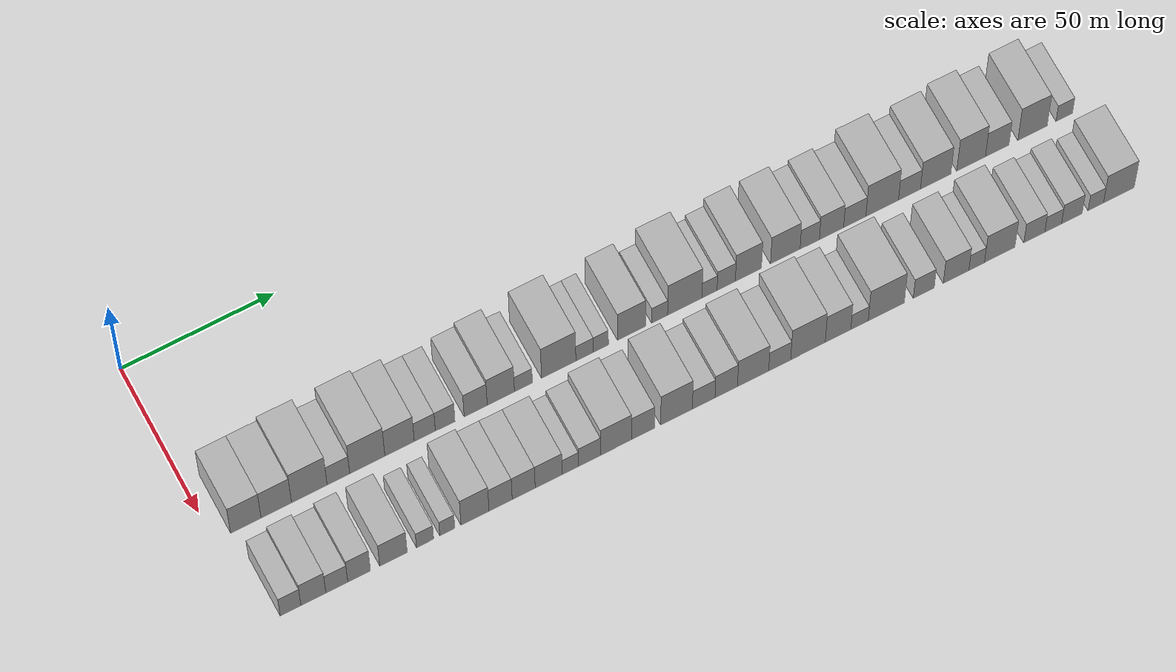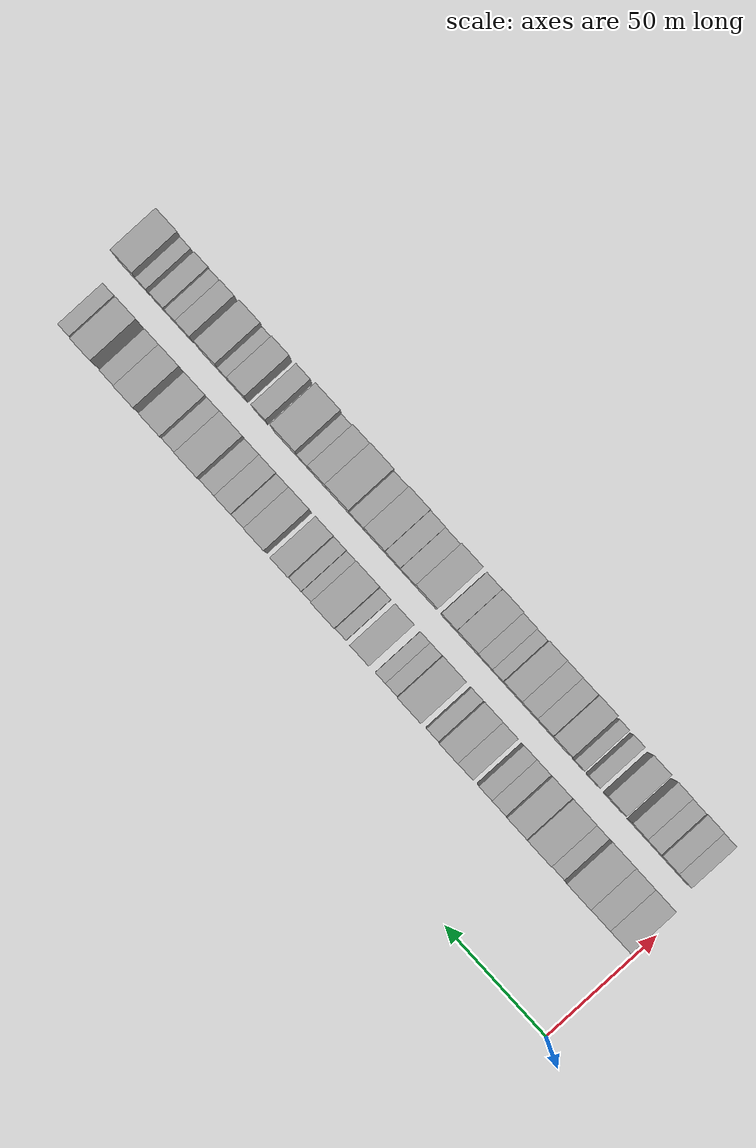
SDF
<sdf version="1.6">
 <world name="default">
  <model name="building_31">
   <static>1</static>
   <pose>50.0000 10.3010 0 0.000000 0.000000 0.000000</pose>
   <link name="link">
    <pose>0 0 10.50 0 0 0</pose>
    <collision name="collision"><geometry><box><size>20.0000 9.8340 21.0000</size></box></geometry></collision>
    <visual name="visual">
     <cast_shadows>0</cast_shadows>
     <geometry><box><size>20.0000 9.8340 21.0000</size></box></geometry>
     <material>
      <script>
       <uri>model://HANNAS_wall/materials/scripts</uri>
       <uri>model://HANNAS_wall/materials/textures</uri>
       <name>vrc/HANNAS_wall</name>
      </script>
     </material>
    </visual>
   </link>
  </model>
  <model name="building_32">
   <static>1</static>
   <pose>50.0000 20.1373 0 0.000000 0.000000 0.000000</pose>
   <link name="link">
    <pose>0 0 10.50 0 0 0</pose>
    <collision name="collision"><geometry><box><size>20.0000 9.8388 21.0000</size></box></geometry></collision>
    <visual name="visual">
     <cast_shadows>0</cast_shadows>
     <geometry><box><size>20.0000 9.8388 21.0000</size></box></geometry>
     <material>
      <script>
       <uri>model://HANNAS_wall/materials/scripts</uri>
       <uri>model://HANNAS_wall/materials/textures</uri>
       <name>vrc/HANNAS_wall</name>
      </script>
     </material>
    </visual>
   </link>
  </model>
  <model name="building_33">
   <static>1</static>
   <pose>50.0000 30.8102 0 0.000000 0.000000 0.000000</pose>
   <link name="link">
    <pose>0 0 12.00 0 0 0</pose>
    <collision name="collision"><geometry><box><size>20.0000 11.5070 24.0000</size></box></geometry></collision>
    <visual name="visual">
     <cast_shadows>0</cast_shadows>
     <geometry><box><size>20.0000 11.5070 24.0000</size></box></geometry>
     <material>
      <script>
       <uri>model://HANNAS_wall/materials/scripts</uri>
       <uri>model://HANNAS_wall/materials/textures</uri>
       <name>vrc/HANNAS_wall</name>
      </script>
     </material>
    </visual>
   </link>
  </model>
  <model name="building_34">
   <static>1</static>
   <pose>50.0000 40.2271 0 0.000000 0.000000 0.000000</pose>
   <link name="link">
    <pose>0 0 7.50 0 0 0</pose>
    <collision name="collision"><geometry><box><size>20.0000 7.3268 15.0000</size></box></geometry></collision>
    <visual name="visual">
     <cast_shadows>0</cast_shadows>
     <geometry><box><size>20.0000 7.3268 15.0000</size></box></geometry>
     <material>
      <script>
       <uri>model://HANNAS_wall/materials/scripts</uri>
       <uri>model://HANNAS_wall/materials/textures</uri>
       <name>vrc/HANNAS_wall</name>
      </script>
     </material>
    </visual>
   </link>
  </model>
  <model name="building_35">
   <static>1</static>
   <pose>50.0000 49.6016 0 0.000000 0.000000 0.000000</pose>
   <link name="link">
    <pose>0 0 12.00 0 0 0</pose>
    <collision name="collision"><geometry><box><size>20.0000 11.4222 24.0000</size></box></geometry></collision>
    <visual name="visual">
     <cast_shadows>0</cast_shadows>
     <geometry><box><size>20.0000 11.4222 24.0000</size></box></geometry>
     <material>
      <script>
       <uri>model://HANNAS_wall/materials/scripts</uri>
       <uri>model://HANNAS_wall/materials/textures</uri>
       <name>vrc/HANNAS_wall</name>
      </script>
     </material>
    </visual>
   </link>
  </model>
  <model name="building_36">
   <static>1</static>
   <pose>50.0000 60.0975 0 0.000000 0.000000 0.000000</pose>
   <link name="link">
    <pose>0 0 10.50 0 0 0</pose>
    <collision name="collision"><geometry><box><size>20.0000 9.5696 21.0000</size></box></geometry></collision>
    <visual name="visual">
     <cast_shadows>0</cast_shadows>
     <geometry><box><size>20.0000 9.5696 21.0000</size></box></geometry>
     <material>
      <script>
       <uri>model://HANNAS_wall/materials/scripts</uri>
       <uri>model://HANNAS_wall/materials/textures</uri>
       <name>vrc/HANNAS_wall</name>
      </script>
     </material>
    </visual>
   </link>
  </model>
  <model name="building_37">
   <static>1</static>
   <pose>50.0000 68.3081 0 0.000000 0.000000 0.000000</pose>
   <link name="link">
    <pose>0 0 7.50 0 0 0</pose>
    <collision name="collision"><geometry><box><size>20.0000 6.8517 15.0000</size></box></geometry></collision>
    <visual name="visual">
     <cast_shadows>0</cast_shadows>
     <geometry><box><size>20.0000 6.8517 15.0000</size></box></geometry>
     <material>
      <script>
       <uri>model://HANNAS_wall/materials/scripts</uri>
       <uri>model://HANNAS_wall/materials/textures</uri>
       <name>vrc/HANNAS_wall</name>
      </script>
     </material>
    </visual>
   </link>
  </model>
  <model name="building_38">
   <static>1</static>
   <pose>50.0000 74.9236 0 0.000000 0.000000 0.000000</pose>
   <link name="link">
    <pose>0 0 7.50 0 0 0</pose>
    <collision name="collision"><geometry><box><size>20.0000 6.3793 15.0000</size></box></geometry></collision>
    <visual name="visual">
     <cast_shadows>0</cast_shadows>
     <geometry><box><size>20.0000 6.3793 15.0000</size></box></geometry>
     <material>
      <script>
       <uri>model://HANNAS_wall/materials/scripts</uri>
       <uri>model://HANNAS_wall/materials/textures</uri>
       <name>vrc/HANNAS_wall</name>
      </script>
     </material>
    </visual>
   </link>
  </model>
  <model name="building_39">
   <static>1</static>
   <pose>50.0000 84.8796 0 0.000000 0.000000 0.000000</pose>
   <link name="link">
    <pose>0 0 9.00 0 0 0</pose>
    <collision name="collision"><geometry><box><size>20.0000 7.5326 18.0000</size></box></geometry></collision>
    <visual name="visual">
     <cast_shadows>0</cast_shadows>
     <geometry><box><size>20.0000 7.5326 18.0000</size></box></geometry>
     <material>
      <script>
       <uri>model://HANNAS_wall/materials/scripts</uri>
       <uri>model://HANNAS_wall/materials/textures</uri>
       <name>vrc/HANNAS_wall</name>
      </script>
     </material>
    </visual>
   </link>
  </model>
  <model name="building_40">
   <static>1</static>
   <pose>50.0000 93.0982 0 0.000000 0.000000 0.000000</pose>
   <link name="link">
    <pose>0 0 10.50 0 0 0</pose>
    <collision name="collision"><geometry><box><size>20.0000 8.9047 21.0000</size></box></geometry></collision>
    <visual name="visual">
     <cast_shadows>0</cast_shadows>
     <geometry><box><size>20.0000 8.9047 21.0000</size></box></geometry>
     <material>
      <script>
       <uri>model://HANNAS_wall/materials/scripts</uri>
       <uri>model://HANNAS_wall/materials/textures</uri>
       <name>vrc/HANNAS_wall</name>
      </script>
     </material>
    </visual>
   </link>
  </model>
  <model name="building_41">
   <static>1</static>
   <pose>50.0000 100.4825 0 0.000000 0.000000 0.000000</pose>
   <link name="link">
    <pose>0 0 6.00 0 0 0</pose>
    <collision name="collision"><geometry><box><size>20.0000 5.8639 12.0000</size></box></geometry></collision>
    <visual name="visual">
     <cast_shadows>0</cast_shadows>
     <geometry><box><size>20.0000 5.8639 12.0000</size></box></geometry>
     <material>
      <script>
       <uri>model://HANNAS_wall/materials/scripts</uri>
       <uri>model://HANNAS_wall/materials/textures</uri>
       <name>vrc/HANNAS_wall</name>
      </script>
     </material>
    </visual>
   </link>
  </model>
  <model name="building_42">
   <static>1</static>
   <pose>50.0000 112.0596 0 0.000000 0.000000 0.000000</pose>
   <link name="link">
    <pose>0 0 12.00 0 0 0</pose>
    <collision name="collision"><geometry><box><size>20.0000 11.2903 24.0000</size></box></geometry></collision>
    <visual name="visual">
     <cast_shadows>0</cast_shadows>
     <geometry><box><size>20.0000 11.2903 24.0000</size></box></geometry>
     <material>
      <script>
       <uri>model://HANNAS_wall/materials/scripts</uri>
       <uri>model://HANNAS_wall/materials/textures</uri>
       <name>vrc/HANNAS_wall</name>
      </script>
     </material>
    </visual>
   </link>
  </model>
  <model name="building_43">
   <static>1</static>
   <pose>50.0000 120.6020 0 0.000000 0.000000 0.000000</pose>
   <link name="link">
    <pose>0 0 6.00 0 0 0</pose>
    <collision name="collision"><geometry><box><size>20.0000 5.7946 12.0000</size></box></geometry></collision>
    <visual name="visual">
     <cast_shadows>0</cast_shadows>
     <geometry><box><size>20.0000 5.7946 12.0000</size></box></geometry>
     <material>
      <script>
       <uri>model://HANNAS_wall/materials/scripts</uri>
       <uri>model://HANNAS_wall/materials/textures</uri>
       <name>vrc/HANNAS_wall</name>
      </script>
     </material>
    </visual>
   </link>
  </model>
  <model name="building_44">
   <static>1</static>
   <pose>50.0000 125.9452 0 0.000000 0.000000 0.000000</pose>
   <link name="link">
    <pose>0 0 6.00 0 0 0</pose>
    <collision name="collision"><geometry><box><size>20.0000 4.8918 12.0000</size></box></geometry></collision>
    <visual name="visual">
     <cast_shadows>0</cast_shadows>
     <geometry><box><size>20.0000 4.8918 12.0000</size></box></geometry>
     <material>
      <script>
       <uri>model://HANNAS_wall/materials/scripts</uri>
       <uri>model://HANNAS_wall/materials/textures</uri>
       <name>vrc/HANNAS_wall</name>
      </script>
     </material>
    </visual>
   </link>
  </model>
  <model name="building_45">
   <static>1</static>
   <pose>50.0000 136.0157 0 0.000000 0.000000 0.000000</pose>
   <link name="link">
    <pose>0 0 10.50 0 0 0</pose>
    <collision name="collision"><geometry><box><size>20.0000 9.2492 21.0000</size></box></geometry></collision>
    <visual name="visual">
     <cast_shadows>0</cast_shadows>
     <geometry><box><size>20.0000 9.2492 21.0000</size></box></geometry>
     <material>
      <script>
       <uri>model://HANNAS_wall/materials/scripts</uri>
       <uri>model://HANNAS_wall/materials/textures</uri>
       <name>vrc/HANNAS_wall</name>
      </script>
     </material>
    </visual>
   </link>
  </model>
  <model name="building_46">
   <static>1</static>
   <pose>50.0000 145.2747 0 0.000000 0.000000 0.000000</pose>
   <link name="link">
    <pose>0 0 6.00 0 0 0</pose>
    <collision name="collision"><geometry><box><size>20.0000 5.2688 12.0000</size></box></geometry></collision>
    <visual name="visual">
     <cast_shadows>0</cast_shadows>
     <geometry><box><size>20.0000 5.2688 12.0000</size></box></geometry>
     <material>
      <script>
       <uri>model://HANNAS_wall/materials/scripts</uri>
       <uri>model://HANNAS_wall/materials/textures</uri>
       <name>vrc/HANNAS_wall</name>
      </script>
     </material>
    </visual>
   </link>
  </model>
  <model name="building_47">
   <static>1</static>
   <pose>50.0000 153.6020 0 0.000000 0.000000 0.000000</pose>
   <link name="link">
    <pose>0 0 12.00 0 0 0</pose>
    <collision name="collision"><geometry><box><size>20.0000 11.3859 24.0000</size></box></geometry></collision>
    <visual name="visual">
     <cast_shadows>0</cast_shadows>
     <geometry><box><size>20.0000 11.3859 24.0000</size></box></geometry>
     <material>
      <script>
       <uri>model://HANNAS_wall/materials/scripts</uri>
       <uri>model://HANNAS_wall/materials/textures</uri>
       <name>vrc/HANNAS_wall</name>
      </script>
     </material>
    </visual>
   </link>
  </model>
  <model name="building_48">
   <static>1</static>
   <pose>50.0000 161.7843 0 0.000000 0.000000 0.000000</pose>
   <link name="link">
    <pose>0 0 6.00 0 0 0</pose>
    <collision name="collision"><geometry><box><size>20.0000 4.9787 12.0000</size></box></geometry></collision>
    <visual name="visual">
     <cast_shadows>0</cast_shadows>
     <geometry><box><size>20.0000 4.9787 12.0000</size></box></geometry>
     <material>
      <script>
       <uri>model://HANNAS_wall/materials/scripts</uri>
       <uri>model://HANNAS_wall/materials/textures</uri>
       <name>vrc/HANNAS_wall</name>
      </script>
     </material>
    </visual>
   </link>
  </model>
  <model name="building_49">
   <static>1</static>
   <pose>50.0000 167.3069 0 0.000000 0.000000 0.000000</pose>
   <link name="link">
    <pose>0 0 7.50 0 0 0</pose>
    <collision name="collision"><geometry><box><size>20.0000 6.0666 15.0000</size></box></geometry></collision>
    <visual name="visual">
     <cast_shadows>0</cast_shadows>
     <geometry><box><size>20.0000 6.0666 15.0000</size></box></geometry>
     <material>
      <script>
       <uri>model://HANNAS_wall/materials/scripts</uri>
       <uri>model://HANNAS_wall/materials/textures</uri>
       <name>vrc/HANNAS_wall</name>
      </script>
     </material>
    </visual>
   </link>
  </model>
  <model name="building_50">
   <static>1</static>
   <pose>50.0000 174.6600 0 0.000000 0.000000 0.000000</pose>
   <link name="link">
    <pose>0 0 10.50 0 0 0</pose>
    <collision name="collision"><geometry><box><size>20.0000 8.6395 21.0000</size></box></geometry></collision>
    <visual name="visual">
     <cast_shadows>0</cast_shadows>
     <geometry><box><size>20.0000 8.6395 21.0000</size></box></geometry>
     <material>
      <script>
       <uri>model://HANNAS_wall/materials/scripts</uri>
       <uri>model://HANNAS_wall/materials/textures</uri>
       <name>vrc/HANNAS_wall</name>
      </script>
     </material>
    </visual>
   </link>
  </model>
  <model name="building_51">
   <static>1</static>
   <pose>50.0000 186.8944 0 0.000000 0.000000 0.000000</pose>
   <link name="link">
    <pose>0 0 10.50 0 0 0</pose>
    <collision name="collision"><geometry><box><size>20.0000 9.8294 21.0000</size></box></geometry></collision>
    <visual name="visual">
     <cast_shadows>0</cast_shadows>
     <geometry><box><size>20.0000 9.8294 21.0000</size></box></geometry>
     <material>
      <script>
       <uri>model://HANNAS_wall/materials/scripts</uri>
       <uri>model://HANNAS_wall/materials/textures</uri>
       <name>vrc/HANNAS_wall</name>
      </script>
     </material>
    </visual>
   </link>
  </model>
  <model name="building_52">
   <static>1</static>
   <pose>50.0000 195.0261 0 0.000000 0.000000 0.000000</pose>
   <link name="link">
    <pose>0 0 7.50 0 0 0</pose>
    <collision name="collision"><geometry><box><size>20.0000 6.4340 15.0000</size></box></geometry></collision>
    <visual name="visual">
     <cast_shadows>0</cast_shadows>
     <geometry><box><size>20.0000 6.4340 15.0000</size></box></geometry>
     <material>
      <script>
       <uri>model://HANNAS_wall/materials/scripts</uri>
       <uri>model://HANNAS_wall/materials/textures</uri>
       <name>vrc/HANNAS_wall</name>
      </script>
     </material>
    </visual>
   </link>
  </model>
  <model name="building_53">
   <static>1</static>
   <pose>50.0000 202.2781 0 0.000000 0.000000 0.000000</pose>
   <link name="link">
    <pose>0 0 9.00 0 0 0</pose>
    <collision name="collision"><geometry><box><size>20.0000 8.0700 18.0000</size></box></geometry></collision>
    <visual name="visual">
     <cast_shadows>0</cast_shadows>
     <geometry><box><size>20.0000 8.0700 18.0000</size></box></geometry>
     <material>
      <script>
       <uri>model://HANNAS_wall/materials/scripts</uri>
       <uri>model://HANNAS_wall/materials/textures</uri>
       <name>vrc/HANNAS_wall</name>
      </script>
     </material>
    </visual>
   </link>
  </model>
  <model name="building_54">
   <static>1</static>
   <pose>50.0000 210.0287 0 0.000000 0.000000 0.000000</pose>
   <link name="link">
    <pose>0 0 7.50 0 0 0</pose>
    <collision name="collision"><geometry><box><size>20.0000 7.4312 15.0000</size></box></geometry></collision>
    <visual name="visual">
     <cast_shadows>0</cast_shadows>
     <geometry><box><size>20.0000 7.4312 15.0000</size></box></geometry>
     <material>
      <script>
       <uri>model://HANNAS_wall/materials/scripts</uri>
       <uri>model://HANNAS_wall/materials/textures</uri>
       <name>vrc/HANNAS_wall</name>
      </script>
     </material>
    </visual>
   </link>
  </model>
  <model name="building_55">
   <static>1</static>
   <pose>50.0000 219.2063 0 0.000000 0.000000 0.000000</pose>
   <link name="link">
    <pose>0 0 12.00 0 0 0</pose>
    <collision name="collision"><geometry><box><size>20.0000 10.9239 24.0000</size></box></geometry></collision>
    <visual name="visual">
     <cast_shadows>0</cast_shadows>
     <geometry><box><size>20.0000 10.9239 24.0000</size></box></geometry>
     <material>
      <script>
       <uri>model://HANNAS_wall/materials/scripts</uri>
       <uri>model://HANNAS_wall/materials/textures</uri>
       <name>vrc/HANNAS_wall</name>
      </script>
     </material>
    </visual>
   </link>
  </model>
  <model name="building_56">
   <static>1</static>
   <pose>50.0000 228.3347 0 0.000000 0.000000 0.000000</pose>
   <link name="link">
    <pose>0 0 7.50 0 0 0</pose>
    <collision name="collision"><geometry><box><size>20.0000 7.3330 15.0000</size></box></geometry></collision>
    <visual name="visual">
     <cast_shadows>0</cast_shadows>
     <geometry><box><size>20.0000 7.3330 15.0000</size></box></geometry>
     <material>
      <script>
       <uri>model://HANNAS_wall/materials/scripts</uri>
       <uri>model://HANNAS_wall/materials/textures</uri>
       <name>vrc/HANNAS_wall</name>
      </script>
     </material>
    </visual>
   </link>
  </model>
  <model name="building_57">
   <static>1</static>
   <pose>50.0000 237.0896 0 0.000000 0.000000 0.000000</pose>
   <link name="link">
    <pose>0 0 10.50 0 0 0</pose>
    <collision name="collision"><geometry><box><size>20.0000 10.1768 21.0000</size></box></geometry></collision>
    <visual name="visual">
     <cast_shadows>0</cast_shadows>
     <geometry><box><size>20.0000 10.1768 21.0000</size></box></geometry>
     <material>
      <script>
       <uri>model://HANNAS_wall/materials/scripts</uri>
       <uri>model://HANNAS_wall/materials/textures</uri>
       <name>vrc/HANNAS_wall</name>
      </script>
     </material>
    </visual>
   </link>
  </model>
  <model name="building_58">
   <static>1</static>
   <pose>50.0000 248.9940 0 0.000000 0.000000 0.000000</pose>
   <link name="link">
    <pose>0 0 12.00 0 0 0</pose>
    <collision name="collision"><geometry><box><size>20.0000 9.6319 24.0000</size></box></geometry></collision>
    <visual name="visual">
     <cast_shadows>0</cast_shadows>
     <geometry><box><size>20.0000 9.6319 24.0000</size></box></geometry>
     <material>
      <script>
       <uri>model://HANNAS_wall/materials/scripts</uri>
       <uri>model://HANNAS_wall/materials/textures</uri>
       <name>vrc/HANNAS_wall</name>
      </script>
     </material>
    </visual>
   </link>
  </model>
  <model name="building_59">
   <static>1</static>
   <pose>50.0000 257.7727 0 0.000000 0.000000 0.000000</pose>
   <link name="link">
    <pose>0 0 9.00 0 0 0</pose>
    <collision name="collision"><geometry><box><size>20.0000 7.9254 18.0000</size></box></geometry></collision>
    <visual name="visual">
     <cast_shadows>0</cast_shadows>
     <geometry><box><size>20.0000 7.9254 18.0000</size></box></geometry>
     <material>
      <script>
       <uri>model://HANNAS_wall/materials/scripts</uri>
       <uri>model://HANNAS_wall/materials/textures</uri>
       <name>vrc/HANNAS_wall</name>
      </script>
     </material>
    </visual>
   </link>
  </model>
  <model name="building_60">
   <static>1</static>
   <pose>50.0000 269.6629 0 0.000000 0.000000 0.000000</pose>
   <link name="link">
    <pose>0 0 12.00 0 0 0</pose>
    <collision name="collision"><geometry><box><size>20.0000 9.8551 24.0000</size></box></geometry></collision>
    <visual name="visual">
     <cast_shadows>0</cast_shadows>
     <geometry><box><size>20.0000 9.8551 24.0000</size></box></geometry>
     <material>
      <script>
       <uri>model://HANNAS_wall/materials/scripts</uri>
       <uri>model://HANNAS_wall/materials/textures</uri>
       <name>vrc/HANNAS_wall</name>
      </script>
     </material>
    </visual>
   </link>
  </model>
  <model name="building_61">
   <static>1</static>
   <pose>50.0000 280.3805 0 0.000000 0.000000 0.000000</pose>
   <link name="link">
    <pose>0 0 6.00 0 0 0</pose>
    <collision name="collision"><geometry><box><size>20.0000 5.5799 12.0000</size></box></geometry></collision>
    <visual name="visual">
     <cast_shadows>0</cast_shadows>
     <geometry><box><size>20.0000 5.5799 12.0000</size></box></geometry>
     <material>
      <script>
       <uri>model://HANNAS_wall/materials/scripts</uri>
       <uri>model://HANNAS_wall/materials/textures</uri>
       <name>vrc/HANNAS_wall</name>
      </script>
     </material>
    </visual>
   </link>
  </model>
  <model name="building_95">
   <static>1</static>
   <pose>79.0000 9.9615 0 0.000000 0.000000 0.000000</pose>
   <link name="link">
    <pose>0 0 7.50 0 0 0</pose>
    <collision name="collision"><geometry><box><size>20.0000 6.6652 15.0000</size></box></geometry></collision>
    <visual name="visual">
     <cast_shadows>0</cast_shadows>
     <geometry><box><size>20.0000 6.6652 15.0000</size></box></geometry>
     <material>
      <script>
       <uri>model://HANNAS_wall/materials/scripts</uri>
       <uri>model://HANNAS_wall/materials/textures</uri>
       <name>vrc/HANNAS_wall</name>
      </script>
     </material>
    </visual>
   </link>
  </model>
  <model name="building_96">
   <static>1</static>
   <pose>79.0000 17.3039 0 0.000000 0.000000 0.000000</pose>
   <link name="link">
    <pose>0 0 9.00 0 0 0</pose>
    <collision name="collision"><geometry><box><size>20.0000 8.0195 18.0000</size></box></geometry></collision>
    <visual name="visual">
     <cast_shadows>0</cast_shadows>
     <geometry><box><size>20.0000 8.0195 18.0000</size></box></geometry>
     <material>
      <script>
       <uri>model://HANNAS_wall/materials/scripts</uri>
       <uri>model://HANNAS_wall/materials/textures</uri>
       <name>vrc/HANNAS_wall</name>
      </script>
     </material>
    </visual>
   </link>
  </model>
  <model name="building_97">
   <static>1</static>
   <pose>79.0000 24.8488 0 0.000000 0.000000 0.000000</pose>
   <link name="link">
    <pose>0 0 7.50 0 0 0</pose>
    <collision name="collision"><geometry><box><size>20.0000 7.0703 15.0000</size></box></geometry></collision>
    <visual name="visual">
     <cast_shadows>0</cast_shadows>
     <geometry><box><size>20.0000 7.0703 15.0000</size></box></geometry>
     <material>
      <script>
       <uri>model://HANNAS_wall/materials/scripts</uri>
       <uri>model://HANNAS_wall/materials/textures</uri>
       <name>vrc/HANNAS_wall</name>
      </script>
     </material>
    </visual>
   </link>
  </model>
  <model name="building_98">
   <static>1</static>
   <pose>79.0000 32.0305 0 0.000000 0.000000 0.000000</pose>
   <link name="link">
    <pose>0 0 9.00 0 0 0</pose>
    <collision name="collision"><geometry><box><size>20.0000 7.2931 18.0000</size></box></geometry></collision>
    <visual name="visual">
     <cast_shadows>0</cast_shadows>
     <geometry><box><size>20.0000 7.2931 18.0000</size></box></geometry>
     <material>
      <script>
       <uri>model://HANNAS_wall/materials/scripts</uri>
       <uri>model://HANNAS_wall/materials/textures</uri>
       <name>vrc/HANNAS_wall</name>
      </script>
     </material>
    </visual>
   </link>
  </model>
  <model name="building_99">
   <static>1</static>
   <pose>79.0000 43.1184 0 0.000000 0.000000 0.000000</pose>
   <link name="link">
    <pose>0 0 9.00 0 0 0</pose>
    <collision name="collision"><geometry><box><size>20.0000 8.8828 18.0000</size></box></geometry></collision>
    <visual name="visual">
     <cast_shadows>0</cast_shadows>
     <geometry><box><size>20.0000 8.8828 18.0000</size></box></geometry>
     <material>
      <script>
       <uri>model://HANNAS_wall/materials/scripts</uri>
       <uri>model://HANNAS_wall/materials/textures</uri>
       <name>vrc/HANNAS_wall</name>
      </script>
     </material>
    </visual>
   </link>
  </model>
  <model name="building_100">
   <static>1</static>
   <pose>79.0000 53.3364 0 0.000000 0.000000 0.000000</pose>
   <link name="link">
    <pose>0 0 6.00 0 0 0</pose>
    <collision name="collision"><geometry><box><size>20.0000 5.5532 12.0000</size></box></geometry></collision>
    <visual name="visual">
     <cast_shadows>0</cast_shadows>
     <geometry><box><size>20.0000 5.5532 12.0000</size></box></geometry>
     <material>
      <script>
       <uri>model://HANNAS_wall/materials/scripts</uri>
       <uri>model://HANNAS_wall/materials/textures</uri>
       <name>vrc/HANNAS_wall</name>
      </script>
     </material>
    </visual>
   </link>
  </model>
  <model name="building_101">
   <static>1</static>
   <pose>79.0000 60.5450 0 0.000000 0.000000 0.000000</pose>
   <link name="link">
    <pose>0 0 6.00 0 0 0</pose>
    <collision name="collision"><geometry><box><size>20.0000 4.8638 12.0000</size></box></geometry></collision>
    <visual name="visual">
     <cast_shadows>0</cast_shadows>
     <geometry><box><size>20.0000 4.8638 12.0000</size></box></geometry>
     <material>
      <script>
       <uri>model://HANNAS_wall/materials/scripts</uri>
       <uri>model://HANNAS_wall/materials/textures</uri>
       <name>vrc/HANNAS_wall</name>
      </script>
     </material>
    </visual>
   </link>
  </model>
  <model name="building_102">
   <static>1</static>
   <pose>79.0000 69.5289 0 0.000000 0.000000 0.000000</pose>
   <link name="link">
    <pose>0 0 10.50 0 0 0</pose>
    <collision name="collision"><geometry><box><size>20.0000 9.1040 21.0000</size></box></geometry></collision>
    <visual name="visual">
     <cast_shadows>0</cast_shadows>
     <geometry><box><size>20.0000 9.1040 21.0000</size></box></geometry>
     <material>
      <script>
       <uri>model://HANNAS_wall/materials/scripts</uri>
       <uri>model://HANNAS_wall/materials/textures</uri>
       <name>vrc/HANNAS_wall</name>
      </script>
     </material>
    </visual>
   </link>
  </model>
  <model name="building_103">
   <static>1</static>
   <pose>79.0000 77.8512 0 0.000000 0.000000 0.000000</pose>
   <link name="link">
    <pose>0 0 9.00 0 0 0</pose>
    <collision name="collision"><geometry><box><size>20.0000 7.5407 18.0000</size></box></geometry></collision>
    <visual name="visual">
     <cast_shadows>0</cast_shadows>
     <geometry><box><size>20.0000 7.5407 18.0000</size></box></geometry>
     <material>
      <script>
       <uri>model://HANNAS_wall/materials/scripts</uri>
       <uri>model://HANNAS_wall/materials/textures</uri>
       <name>vrc/HANNAS_wall</name>
      </script>
     </material>
    </visual>
   </link>
  </model>
  <model name="building_104">
   <static>1</static>
   <pose>79.0000 85.3609 0 0.000000 0.000000 0.000000</pose>
   <link name="link">
    <pose>0 0 9.00 0 0 0</pose>
    <collision name="collision"><geometry><box><size>20.0000 7.4787 18.0000</size></box></geometry></collision>
    <visual name="visual">
     <cast_shadows>0</cast_shadows>
     <geometry><box><size>20.0000 7.4787 18.0000</size></box></geometry>
     <material>
      <script>
       <uri>model://HANNAS_wall/materials/scripts</uri>
       <uri>model://HANNAS_wall/materials/textures</uri>
       <name>vrc/HANNAS_wall</name>
      </script>
     </material>
    </visual>
   </link>
  </model>
  <model name="building_105">
   <static>1</static>
   <pose>79.0000 93.5083 0 0.000000 0.000000 0.000000</pose>
   <link name="link">
    <pose>0 0 9.00 0 0 0</pose>
    <collision name="collision"><geometry><box><size>20.0000 8.8161 18.0000</size></box></geometry></collision>
    <visual name="visual">
     <cast_shadows>0</cast_shadows>
     <geometry><box><size>20.0000 8.8161 18.0000</size></box></geometry>
     <material>
      <script>
       <uri>model://HANNAS_wall/materials/scripts</uri>
       <uri>model://HANNAS_wall/materials/textures</uri>
       <name>vrc/HANNAS_wall</name>
      </script>
     </material>
    </visual>
   </link>
  </model>
  <model name="building_106">
   <static>1</static>
   <pose>79.0000 100.5982 0 0.000000 0.000000 0.000000</pose>
   <link name="link">
    <pose>0 0 6.00 0 0 0</pose>
    <collision name="collision"><geometry><box><size>20.0000 5.3637 12.0000</size></box></geometry></collision>
    <visual name="visual">
     <cast_shadows>0</cast_shadows>
     <geometry><box><size>20.0000 5.3637 12.0000</size></box></geometry>
     <material>
      <script>
       <uri>model://HANNAS_wall/materials/scripts</uri>
       <uri>model://HANNAS_wall/materials/textures</uri>
       <name>vrc/HANNAS_wall</name>
      </script>
     </material>
    </visual>
   </link>
  </model>
  <model name="building_107">
   <static>1</static>
   <pose>79.0000 106.8569 0 0.000000 0.000000 0.000000</pose>
   <link name="link">
    <pose>0 0 7.50 0 0 0</pose>
    <collision name="collision"><geometry><box><size>20.0000 7.1536 15.0000</size></box></geometry></collision>
    <visual name="visual">
     <cast_shadows>0</cast_shadows>
     <geometry><box><size>20.0000 7.1536 15.0000</size></box></geometry>
     <material>
      <script>
       <uri>model://HANNAS_wall/materials/scripts</uri>
       <uri>model://HANNAS_wall/materials/textures</uri>
       <name>vrc/HANNAS_wall</name>
      </script>
     </material>
    </visual>
   </link>
  </model>
  <model name="building_108">
   <static>1</static>
   <pose>79.0000 115.5226 0 0.000000 0.000000 0.000000</pose>
   <link name="link">
    <pose>0 0 10.50 0 0 0</pose>
    <collision name="collision"><geometry><box><size>20.0000 10.1778 21.0000</size></box></geometry></collision>
    <visual name="visual">
     <cast_shadows>0</cast_shadows>
     <geometry><box><size>20.0000 10.1778 21.0000</size></box></geometry>
     <material>
      <script>
       <uri>model://HANNAS_wall/materials/scripts</uri>
       <uri>model://HANNAS_wall/materials/textures</uri>
       <name>vrc/HANNAS_wall</name>
      </script>
     </material>
    </visual>
   </link>
  </model>
  <model name="building_109">
   <static>1</static>
   <pose>79.0000 124.3724 0 0.000000 0.000000 0.000000</pose>
   <link name="link">
    <pose>0 0 9.00 0 0 0</pose>
    <collision name="collision"><geometry><box><size>20.0000 7.5217 18.0000</size></box></geometry></collision>
    <visual name="visual">
     <cast_shadows>0</cast_shadows>
     <geometry><box><size>20.0000 7.5217 18.0000</size></box></geometry>
     <material>
      <script>
       <uri>model://HANNAS_wall/materials/scripts</uri>
       <uri>model://HANNAS_wall/materials/textures</uri>
       <name>vrc/HANNAS_wall</name>
      </script>
     </material>
    </visual>
   </link>
  </model>
  <model name="building_110">
   <static>1</static>
   <pose>79.0000 135.3453 0 0.000000 0.000000 0.000000</pose>
   <link name="link">
    <pose>0 0 12.00 0 0 0</pose>
    <collision name="collision"><geometry><box><size>20.0000 10.4242 24.0000</size></box></geometry></collision>
    <visual name="visual">
     <cast_shadows>0</cast_shadows>
     <geometry><box><size>20.0000 10.4242 24.0000</size></box></geometry>
     <material>
      <script>
       <uri>model://HANNAS_wall/materials/scripts</uri>
       <uri>model://HANNAS_wall/materials/textures</uri>
       <name>vrc/HANNAS_wall</name>
      </script>
     </material>
    </visual>
   </link>
  </model>
  <model name="building_111">
   <static>1</static>
   <pose>79.0000 144.2693 0 0.000000 0.000000 0.000000</pose>
   <link name="link">
    <pose>0 0 7.50 0 0 0</pose>
    <collision name="collision"><geometry><box><size>20.0000 7.4240 15.0000</size></box></geometry></collision>
    <visual name="visual">
     <cast_shadows>0</cast_shadows>
     <geometry><box><size>20.0000 7.4240 15.0000</size></box></geometry>
     <material>
      <script>
       <uri>model://HANNAS_wall/materials/scripts</uri>
       <uri>model://HANNAS_wall/materials/textures</uri>
       <name>vrc/HANNAS_wall</name>
      </script>
     </material>
    </visual>
   </link>
  </model>
  <model name="building_112">
   <static>1</static>
   <pose>79.0000 151.6896 0 0.000000 0.000000 0.000000</pose>
   <link name="link">
    <pose>0 0 9.00 0 0 0</pose>
    <collision name="collision"><geometry><box><size>20.0000 7.4166 18.0000</size></box></geometry></collision>
    <visual name="visual">
     <cast_shadows>0</cast_shadows>
     <geometry><box><size>20.0000 7.4166 18.0000</size></box></geometry>
     <material>
      <script>
       <uri>model://HANNAS_wall/materials/scripts</uri>
       <uri>model://HANNAS_wall/materials/textures</uri>
       <name>vrc/HANNAS_wall</name>
      </script>
     </material>
    </visual>
   </link>
  </model>
  <model name="building_113">
   <static>1</static>
   <pose>79.0000 160.5327 0 0.000000 0.000000 0.000000</pose>
   <link name="link">
    <pose>0 0 10.50 0 0 0</pose>
    <collision name="collision"><geometry><box><size>20.0000 10.2695 21.0000</size></box></geometry></collision>
    <visual name="visual">
     <cast_shadows>0</cast_shadows>
     <geometry><box><size>20.0000 10.2695 21.0000</size></box></geometry>
     <material>
      <script>
       <uri>model://HANNAS_wall/materials/scripts</uri>
       <uri>model://HANNAS_wall/materials/textures</uri>
       <name>vrc/HANNAS_wall</name>
      </script>
     </material>
    </visual>
   </link>
  </model>
  <model name="building_114">
   <static>1</static>
   <pose>79.0000 169.3081 0 0.000000 0.000000 0.000000</pose>
   <link name="link">
    <pose>0 0 7.50 0 0 0</pose>
    <collision name="collision"><geometry><box><size>20.0000 7.2815 15.0000</size></box></geometry></collision>
    <visual name="visual">
     <cast_shadows>0</cast_shadows>
     <geometry><box><size>20.0000 7.2815 15.0000</size></box></geometry>
     <material>
      <script>
       <uri>model://HANNAS_wall/materials/scripts</uri>
       <uri>model://HANNAS_wall/materials/textures</uri>
       <name>vrc/HANNAS_wall</name>
      </script>
     </material>
    </visual>
   </link>
  </model>
  <model name="building_115">
   <static>1</static>
   <pose>79.0000 178.6580 0 0.000000 0.000000 0.000000</pose>
   <link name="link">
    <pose>0 0 12.00 0 0 0</pose>
    <collision name="collision"><geometry><box><size>20.0000 11.4184 24.0000</size></box></geometry></collision>
    <visual name="visual">
     <cast_shadows>0</cast_shadows>
     <geometry><box><size>20.0000 11.4184 24.0000</size></box></geometry>
     <material>
      <script>
       <uri>model://HANNAS_wall/materials/scripts</uri>
       <uri>model://HANNAS_wall/materials/textures</uri>
       <name>vrc/HANNAS_wall</name>
      </script>
     </material>
    </visual>
   </link>
  </model>
  <model name="building_116">
   <static>1</static>
   <pose>79.0000 188.5964 0 0.000000 0.000000 0.000000</pose>
   <link name="link">
    <pose>0 0 10.50 0 0 0</pose>
    <collision name="collision"><geometry><box><size>20.0000 8.4583 21.0000</size></box></geometry></collision>
    <visual name="visual">
     <cast_shadows>0</cast_shadows>
     <geometry><box><size>20.0000 8.4583 21.0000</size></box></geometry>
     <material>
      <script>
       <uri>model://HANNAS_wall/materials/scripts</uri>
       <uri>model://HANNAS_wall/materials/textures</uri>
       <name>vrc/HANNAS_wall</name>
      </script>
     </material>
    </visual>
   </link>
  </model>
  <model name="building_117">
   <static>1</static>
   <pose>79.0000 195.7181 0 0.000000 0.000000 0.000000</pose>
   <link name="link">
    <pose>0 0 6.00 0 0 0</pose>
    <collision name="collision"><geometry><box><size>20.0000 5.7851 12.0000</size></box></geometry></collision>
    <visual name="visual">
     <cast_shadows>0</cast_shadows>
     <geometry><box><size>20.0000 5.7851 12.0000</size></box></geometry>
     <material>
      <script>
       <uri>model://HANNAS_wall/materials/scripts</uri>
       <uri>model://HANNAS_wall/materials/textures</uri>
       <name>vrc/HANNAS_wall</name>
      </script>
     </material>
    </visual>
   </link>
  </model>
  <model name="building_118">
   <static>1</static>
   <pose>79.0000 204.5990 0 0.000000 0.000000 0.000000</pose>
   <link name="link">
    <pose>0 0 12.00 0 0 0</pose>
    <collision name="collision"><geometry><box><size>20.0000 11.9767 24.0000</size></box></geometry></collision>
    <visual name="visual">
     <cast_shadows>0</cast_shadows>
     <geometry><box><size>20.0000 11.9767 24.0000</size></box></geometry>
     <material>
      <script>
       <uri>model://HANNAS_wall/materials/scripts</uri>
       <uri>model://HANNAS_wall/materials/textures</uri>
       <name>vrc/HANNAS_wall</name>
      </script>
     </material>
    </visual>
   </link>
  </model>
  <model name="building_119">
   <static>1</static>
   <pose>79.0000 217.0792 0 0.000000 0.000000 0.000000</pose>
   <link name="link">
    <pose>0 0 7.50 0 0 0</pose>
    <collision name="collision"><geometry><box><size>20.0000 6.9836 15.0000</size></box></geometry></collision>
    <visual name="visual">
     <cast_shadows>0</cast_shadows>
     <geometry><box><size>20.0000 6.9836 15.0000</size></box></geometry>
     <material>
      <script>
       <uri>model://HANNAS_wall/materials/scripts</uri>
       <uri>model://HANNAS_wall/materials/textures</uri>
       <name>vrc/HANNAS_wall</name>
      </script>
     </material>
    </visual>
   </link>
  </model>
  <model name="building_120">
   <static>1</static>
   <pose>79.0000 227.8484 0 0.000000 0.000000 0.000000</pose>
   <link name="link">
    <pose>0 0 9.00 0 0 0</pose>
    <collision name="collision"><geometry><box><size>20.0000 8.5548 18.0000</size></box></geometry></collision>
    <visual name="visual">
     <cast_shadows>0</cast_shadows>
     <geometry><box><size>20.0000 8.5548 18.0000</size></box></geometry>
     <material>
      <script>
       <uri>model://HANNAS_wall/materials/scripts</uri>
       <uri>model://HANNAS_wall/materials/textures</uri>
       <name>vrc/HANNAS_wall</name>
      </script>
     </material>
    </visual>
   </link>
  </model>
  <model name="building_121">
   <static>1</static>
   <pose>79.0000 234.7341 0 0.000000 0.000000 0.000000</pose>
   <link name="link">
    <pose>0 0 6.00 0 0 0</pose>
    <collision name="collision"><geometry><box><size>20.0000 5.2166 12.0000</size></box></geometry></collision>
    <visual name="visual">
     <cast_shadows>0</cast_shadows>
     <geometry><box><size>20.0000 5.2166 12.0000</size></box></geometry>
     <material>
      <script>
       <uri>model://HANNAS_wall/materials/scripts</uri>
       <uri>model://HANNAS_wall/materials/textures</uri>
       <name>vrc/HANNAS_wall</name>
      </script>
     </material>
    </visual>
   </link>
  </model>
  <model name="building_122">
   <static>1</static>
   <pose>79.0000 242.4222 0 0.000000 0.000000 0.000000</pose>
   <link name="link">
    <pose>0 0 10.50 0 0 0</pose>
    <collision name="collision"><geometry><box><size>20.0000 10.1595 21.0000</size></box></geometry></collision>
    <visual name="visual">
     <cast_shadows>0</cast_shadows>
     <geometry><box><size>20.0000 10.1595 21.0000</size></box></geometry>
     <material>
      <script>
       <uri>model://HANNAS_wall/materials/scripts</uri>
       <uri>model://HANNAS_wall/materials/textures</uri>
       <name>vrc/HANNAS_wall</name>
      </script>
     </material>
    </visual>
   </link>
  </model>
  <model name="building_123">
   <static>1</static>
   <pose>79.0000 254.0231 0 0.000000 0.000000 0.000000</pose>
   <link name="link">
    <pose>0 0 7.50 0 0 0</pose>
    <collision name="collision"><geometry><box><size>20.0000 7.0423 15.0000</size></box></geometry></collision>
    <visual name="visual">
     <cast_shadows>0</cast_shadows>
     <geometry><box><size>20.0000 7.0423 15.0000</size></box></geometry>
     <material>
      <script>
       <uri>model://HANNAS_wall/materials/scripts</uri>
       <uri>model://HANNAS_wall/materials/textures</uri>
       <name>vrc/HANNAS_wall</name>
      </script>
     </material>
    </visual>
   </link>
  </model>
  <model name="building_124">
   <static>1</static>
   <pose>79.0000 260.3461 0 0.000000 0.000000 0.000000</pose>
   <link name="link">
    <pose>0 0 6.00 0 0 0</pose>
    <collision name="collision"><geometry><box><size>20.0000 5.6038 12.0000</size></box></geometry></collision>
    <visual name="visual">
     <cast_shadows>0</cast_shadows>
     <geometry><box><size>20.0000 5.6038 12.0000</size></box></geometry>
     <material>
      <script>
       <uri>model://HANNAS_wall/materials/scripts</uri>
       <uri>model://HANNAS_wall/materials/textures</uri>
       <name>vrc/HANNAS_wall</name>
      </script>
     </material>
    </visual>
   </link>
  </model>
  <model name="building_125">
   <static>1</static>
   <pose>79.0000 266.6051 0 0.000000 0.000000 0.000000</pose>
   <link name="link">
    <pose>0 0 7.50 0 0 0</pose>
    <collision name="collision"><geometry><box><size>20.0000 6.9142 15.0000</size></box></geometry></collision>
    <visual name="visual">
     <cast_shadows>0</cast_shadows>
     <geometry><box><size>20.0000 6.9142 15.0000</size></box></geometry>
     <material>
      <script>
       <uri>model://HANNAS_wall/materials/scripts</uri>
       <uri>model://HANNAS_wall/materials/textures</uri>
       <name>vrc/HANNAS_wall</name>
      </script>
     </material>
    </visual>
   </link>
  </model>
  <model name="building_126">
   <static>1</static>
   <pose>79.0000 274.6620 0 0.000000 0.000000 0.000000</pose>
   <link name="link">
    <pose>0 0 6.00 0 0 0</pose>
    <collision name="collision"><geometry><box><size>20.0000 5.1996 12.0000</size></box></geometry></collision>
    <visual name="visual">
     <cast_shadows>0</cast_shadows>
     <geometry><box><size>20.0000 5.1996 12.0000</size></box></geometry>
     <material>
      <script>
       <uri>model://HANNAS_wall/materials/scripts</uri>
       <uri>model://HANNAS_wall/materials/textures</uri>
       <name>vrc/HANNAS_wall</name>
      </script>
     </material>
    </visual>
   </link>
  </model>
  <model name="building_127">
   <static>1</static>
   <pose>79.0000 282.4261 0 0.000000 0.000000 0.000000</pose>
   <link name="link">
    <pose>0 0 10.50 0 0 0</pose>
    <collision name="collision"><geometry><box><size>20.0000 10.3285 21.0000</size></box></geometry></collision>
    <visual name="visual">
     <cast_shadows>0</cast_shadows>
     <geometry><box><size>20.0000 10.3285 21.0000</size></box></geometry>
     <material>
      <script>
       <uri>model://HANNAS_wall/materials/scripts</uri>
       <uri>model://HANNAS_wall/materials/textures</uri>
       <name>vrc/HANNAS_wall</name>
      </script>
     </material>
    </visual>
   </link>
  </model>
 </world>
</sdf>
